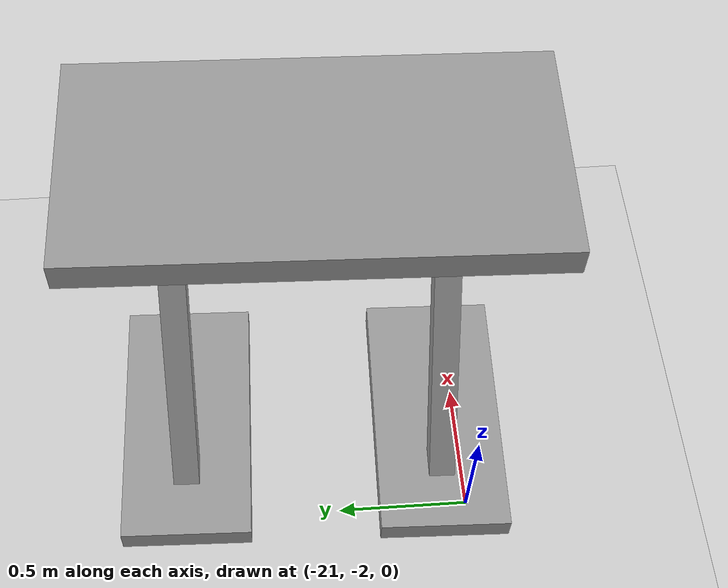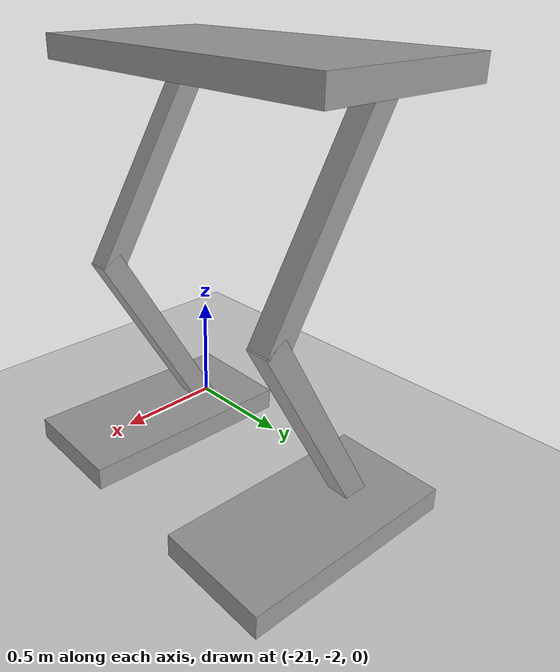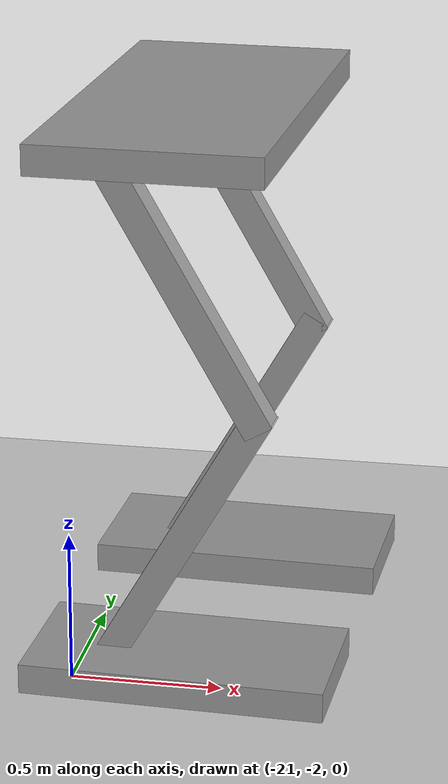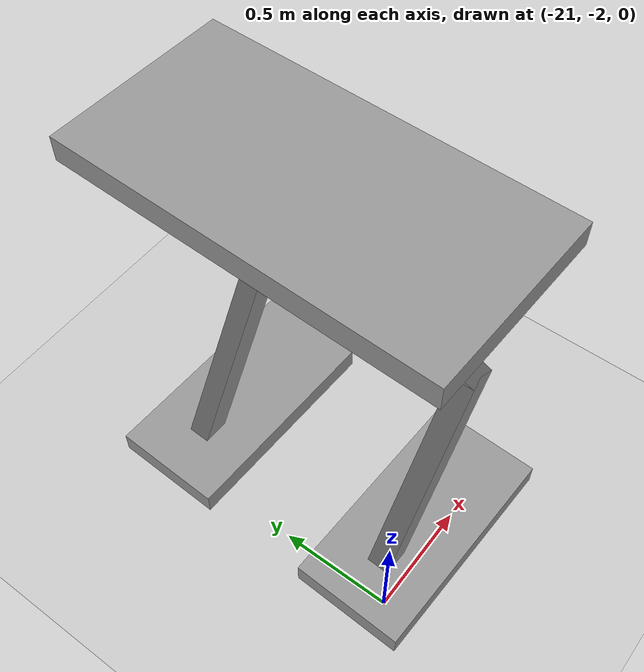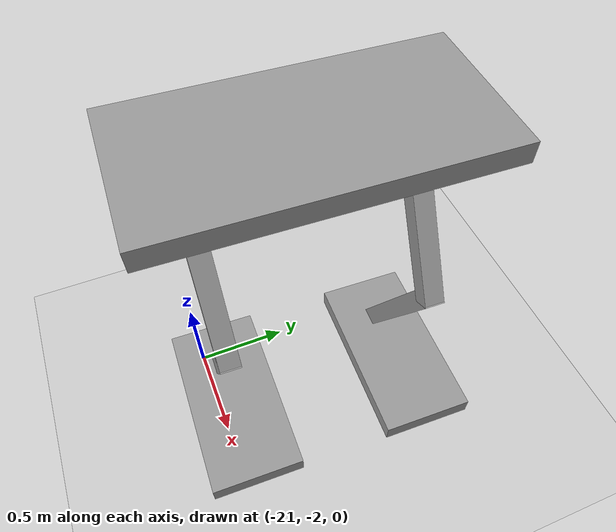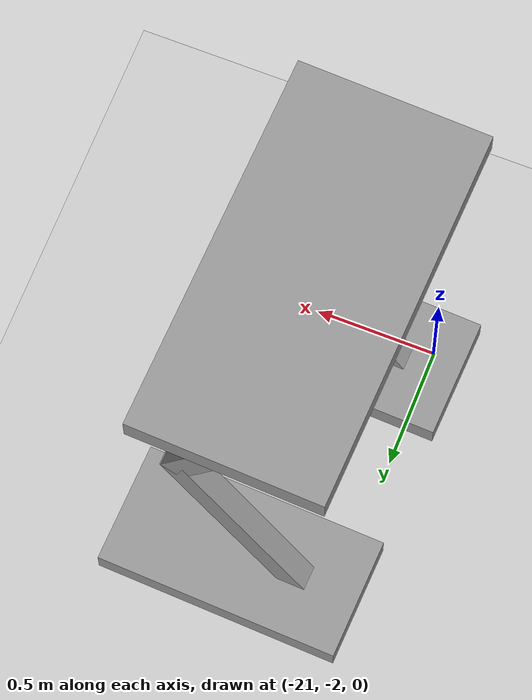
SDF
<sdf version="1.6">
 <world name="default">
  <model name="ground_plane">
   <static>1</static>
   <link name="link">
    <collision name="collision">
     <geometry><plane><normal>0 0 1</normal><size>100 100</size></plane></geometry>
     <surface><friction><ode><mu>100</mu><mu2>50</mu2></ode></friction></surface>
    </collision>
    <visual name="visual">
     <cast_shadows>0</cast_shadows>
     <geometry><plane><normal>0 0 1</normal><size>100 100</size></plane></geometry>
     <material>
      <script><uri>file://media/materials/scripts/gazebo.material</uri><name>Gazebo/Grey</name></script>
     </material>
    </visual>
   </link>
  </model>
  <model name="HumanoidRobot">
   <link name="link_1">
    <pose>0.010779 0.5 -0.738095 0 -0 0</pose>
    <inertial>
     <mass>1</mass>
     <inertia>
      <ixx>0.166667</ixx>
      <ixy>0</ixy>
      <ixz>0</ixz>
      <iyy>0.166667</iyy>
      <iyz>0</iyz>
      <izz>0.166667</izz>
     </inertia>
    </inertial>
    <visual name="visual">
     <geometry><box><size>1 0.5 0.1</size></box></geometry>
     <material>
      <lighting>1</lighting>
      <script><uri>file://media/materials/scripts/gazebo.material</uri><name>Gazebo/Grey</name></script>
      <ambient>0.3 0.3 0.3 1</ambient>
      <diffuse>0.7 0.7 0.7 1</diffuse>
      <specular>0.01 0.01 0.01 1</specular>
      <emissive>0 0 0 1</emissive>
      <shader type="vertex"><normal_map>__default__</normal_map></shader>
     </material>
    </visual>
    <collision name="collision">
     <geometry><box><size>1 0.5 0.1</size></box></geometry>
     <surface>
      <friction>
       <ode><mu>1</mu><mu2>1</mu2><fdir1>0 0 0</fdir1><slip1>0</slip1><slip2>0</slip2></ode>
       <torsional>
        <coefficient>1</coefficient>
        <patch_radius>0</patch_radius>
        <surface_radius>0</surface_radius>
        <use_patch_radius>1</use_patch_radius>
        <ode><slip>0</slip></ode>
       </torsional>
      </friction>
      <bounce><restitution_coefficient>0</restitution_coefficient><threshold>1e+06</threshold></bounce>
      <contact>
       <collide_without_contact>0</collide_without_contact>
       <collide_without_contact_bitmask>1</collide_without_contact_bitmask>
       <collide_bitmask>1</collide_bitmask>
       <ode>
        <soft_cfm>0</soft_cfm>
        <soft_erp>0.2</soft_erp>
        <kp>1e+13</kp>
        <kd>1</kd>
        <max_vel>0.01</max_vel>
        <min_depth>0</min_depth>
       </ode>
       <bullet>
        <split_impulse>1</split_impulse>
        <split_impulse_penetration_threshold>-0.01</split_impulse_penetration_threshold>
        <soft_cfm>0</soft_cfm>
        <soft_erp>0.2</soft_erp>
        <kp>1e+13</kp>
        <kd>1</kd>
       </bullet>
      </contact>
     </surface>
    </collision>
   </link>
   <link name="link_1_clone">
    <pose>0.010779 -0.5 -0.738095 0 -0 0</pose>
    <inertial>
     <mass>1</mass>
     <inertia>
      <ixx>0.166667</ixx>
      <ixy>0</ixy>
      <ixz>0</ixz>
      <iyy>0.166667</iyy>
      <iyz>0</iyz>
      <izz>0.166667</izz>
     </inertia>
    </inertial>
    <visual name="visual">
     <geometry><box><size>1 0.5 0.1</size></box></geometry>
     <material>
      <lighting>1</lighting>
      <script><uri>file://media/materials/scripts/gazebo.material</uri><name>Gazebo/Grey</name></script>
      <ambient>0.3 0.3 0.3 1</ambient>
      <diffuse>0.7 0.7 0.7 1</diffuse>
      <specular>0.01 0.01 0.01 1</specular>
      <emissive>0 0 0 1</emissive>
      <shader type="vertex"><normal_map>__default__</normal_map></shader>
     </material>
    </visual>
    <collision name="collision">
     <geometry><box><size>1 0.5 0.1</size></box></geometry>
     <surface>
      <friction>
       <ode><mu>1</mu><mu2>1</mu2><fdir1>0 0 0</fdir1><slip1>0</slip1><slip2>0</slip2></ode>
       <torsional>
        <coefficient>1</coefficient>
        <patch_radius>0</patch_radius>
        <surface_radius>0</surface_radius>
        <use_patch_radius>1</use_patch_radius>
        <ode><slip>0</slip></ode>
       </torsional>
      </friction>
      <bounce><restitution_coefficient>0</restitution_coefficient><threshold>1e+06</threshold></bounce>
      <contact>
       <collide_without_contact>0</collide_without_contact>
       <collide_without_contact_bitmask>1</collide_without_contact_bitmask>
       <collide_bitmask>1</collide_bitmask>
       <ode>
        <soft_cfm>0</soft_cfm>
        <soft_erp>0.2</soft_erp>
        <kp>1e+13</kp>
        <kd>1</kd>
        <max_vel>0.01</max_vel>
        <min_depth>0</min_depth>
       </ode>
       <bullet>
        <split_impulse>1</split_impulse>
        <split_impulse_penetration_threshold>-0.01</split_impulse_penetration_threshold>
        <soft_cfm>0</soft_cfm>
        <soft_erp>0.2</soft_erp>
        <kp>1e+13</kp>
        <kd>1</kd>
       </bullet>
      </contact>
     </surface>
    </collision>
   </link>
   <link name="link_2">
    <pose>0.010779 0.5 -0.285082 0 0.523598 0</pose>
    <inertial>
     <mass>1</mass>
     <inertia>
      <ixx>0.166667</ixx>
      <ixy>0</ixy>
      <ixz>0</ixz>
      <iyy>0.166667</iyy>
      <iyz>0</iyz>
      <izz>0.166667</izz>
     </inertia>
    </inertial>
    <visual name="visual">
     <geometry><box><size>0.1 0.1 1</size></box></geometry>
     <material>
      <lighting>1</lighting>
      <script><uri>file://media/materials/scripts/gazebo.material</uri><name>Gazebo/Grey</name></script>
      <ambient>0.3 0.3 0.3 1</ambient>
      <diffuse>0.7 0.7 0.7 1</diffuse>
      <specular>0.01 0.01 0.01 1</specular>
      <emissive>0 0 0 1</emissive>
      <shader type="vertex"><normal_map>__default__</normal_map></shader>
     </material>
    </visual>
    <collision name="collision">
     <geometry><box><size>0.1 0.1 1</size></box></geometry>
     <surface>
      <friction>
       <ode><mu>1</mu><mu2>1</mu2><fdir1>0 0 0</fdir1><slip1>0</slip1><slip2>0</slip2></ode>
       <torsional>
        <coefficient>1</coefficient>
        <patch_radius>0</patch_radius>
        <surface_radius>0</surface_radius>
        <use_patch_radius>1</use_patch_radius>
        <ode><slip>0</slip></ode>
       </torsional>
      </friction>
      <bounce><restitution_coefficient>0</restitution_coefficient><threshold>1e+06</threshold></bounce>
      <contact>
       <collide_without_contact>0</collide_without_contact>
       <collide_without_contact_bitmask>1</collide_without_contact_bitmask>
       <collide_bitmask>1</collide_bitmask>
       <ode>
        <soft_cfm>0</soft_cfm>
        <soft_erp>0.2</soft_erp>
        <kp>1e+13</kp>
        <kd>1</kd>
        <max_vel>0.01</max_vel>
        <min_depth>0</min_depth>
       </ode>
       <bullet>
        <split_impulse>1</split_impulse>
        <split_impulse_penetration_threshold>-0.01</split_impulse_penetration_threshold>
        <soft_cfm>0</soft_cfm>
        <soft_erp>0.2</soft_erp>
        <kp>1e+13</kp>
        <kd>1</kd>
       </bullet>
      </contact>
     </surface>
    </collision>
   </link>
   <link name="link_2_clone">
    <pose>0.009081 0.5 0.528002 0 -0.523598 0</pose>
    <inertial>
     <mass>1</mass>
     <inertia>
      <ixx>0.166667</ixx>
      <ixy>0</ixy>
      <ixz>0</ixz>
      <iyy>0.166667</iyy>
      <iyz>0</iyz>
      <izz>0.166667</izz>
     </inertia>
    </inertial>
    <visual name="visual">
     <geometry><box><size>0.1 0.1 1</size></box></geometry>
     <material>
      <lighting>1</lighting>
      <script><uri>file://media/materials/scripts/gazebo.material</uri><name>Gazebo/Grey</name></script>
      <ambient>0.3 0.3 0.3 1</ambient>
      <diffuse>0.7 0.7 0.7 1</diffuse>
      <specular>0.01 0.01 0.01 1</specular>
      <emissive>0 0 0 1</emissive>
      <shader type="vertex"><normal_map>__default__</normal_map></shader>
     </material>
    </visual>
    <collision name="collision">
     <geometry><box><size>0.1 0.1 1</size></box></geometry>
     <surface>
      <friction>
       <ode><mu>1</mu><mu2>1</mu2><fdir1>0 0 0</fdir1><slip1>0</slip1><slip2>0</slip2></ode>
       <torsional>
        <coefficient>1</coefficient>
        <patch_radius>0</patch_radius>
        <surface_radius>0</surface_radius>
        <use_patch_radius>1</use_patch_radius>
        <ode><slip>0</slip></ode>
       </torsional>
      </friction>
      <bounce><restitution_coefficient>0</restitution_coefficient><threshold>1e+06</threshold></bounce>
      <contact>
       <collide_without_contact>0</collide_without_contact>
       <collide_without_contact_bitmask>1</collide_without_contact_bitmask>
       <collide_bitmask>1</collide_bitmask>
       <ode>
        <soft_cfm>0</soft_cfm>
        <soft_erp>0.2</soft_erp>
        <kp>1e+13</kp>
        <kd>1</kd>
        <max_vel>0.01</max_vel>
        <min_depth>0</min_depth>
       </ode>
       <bullet>
        <split_impulse>1</split_impulse>
        <split_impulse_penetration_threshold>-0.01</split_impulse_penetration_threshold>
        <soft_cfm>0</soft_cfm>
        <soft_erp>0.2</soft_erp>
        <kp>1e+13</kp>
        <kd>1</kd>
       </bullet>
      </contact>
     </surface>
    </collision>
   </link>
   <link name="link_2_clone_0">
    <pose>0.010779 -0.5 -0.288095 0 0.523598 0</pose>
    <inertial>
     <mass>1</mass>
     <inertia>
      <ixx>0.166667</ixx>
      <ixy>0</ixy>
      <ixz>0</ixz>
      <iyy>0.166667</iyy>
      <iyz>0</iyz>
      <izz>0.166667</izz>
     </inertia>
    </inertial>
    <visual name="visual">
     <geometry><box><size>0.1 0.1 1</size></box></geometry>
     <material>
      <lighting>1</lighting>
      <script><uri>file://media/materials/scripts/gazebo.material</uri><name>Gazebo/Grey</name></script>
      <ambient>0.3 0.3 0.3 1</ambient>
      <diffuse>0.7 0.7 0.7 1</diffuse>
      <specular>0.01 0.01 0.01 1</specular>
      <emissive>0 0 0 1</emissive>
      <shader type="vertex"><normal_map>__default__</normal_map></shader>
     </material>
    </visual>
    <collision name="collision">
     <geometry><box><size>0.1 0.1 1</size></box></geometry>
     <surface>
      <friction>
       <ode><mu>1</mu><mu2>1</mu2><fdir1>0 0 0</fdir1><slip1>0</slip1><slip2>0</slip2></ode>
       <torsional>
        <coefficient>1</coefficient>
        <patch_radius>0</patch_radius>
        <surface_radius>0</surface_radius>
        <use_patch_radius>1</use_patch_radius>
        <ode><slip>0</slip></ode>
       </torsional>
      </friction>
      <bounce><restitution_coefficient>0</restitution_coefficient><threshold>1e+06</threshold></bounce>
      <contact>
       <collide_without_contact>0</collide_without_contact>
       <collide_without_contact_bitmask>1</collide_without_contact_bitmask>
       <collide_bitmask>1</collide_bitmask>
       <ode>
        <soft_cfm>0</soft_cfm>
        <soft_erp>0.2</soft_erp>
        <kp>1e+13</kp>
        <kd>1</kd>
        <max_vel>0.01</max_vel>
        <min_depth>0</min_depth>
       </ode>
       <bullet>
        <split_impulse>1</split_impulse>
        <split_impulse_penetration_threshold>-0.01</split_impulse_penetration_threshold>
        <soft_cfm>0</soft_cfm>
        <soft_erp>0.2</soft_erp>
        <kp>1e+13</kp>
        <kd>1</kd>
       </bullet>
      </contact>
     </surface>
    </collision>
   </link>
   <link name="link_2_clone_clone">
    <pose>0.009081 -0.5 0.524989 0 -0.523598 0</pose>
    <inertial>
     <mass>1</mass>
     <inertia>
      <ixx>0.166667</ixx>
      <ixy>0</ixy>
      <ixz>0</ixz>
      <iyy>0.166667</iyy>
      <iyz>0</iyz>
      <izz>0.166667</izz>
     </inertia>
    </inertial>
    <visual name="visual">
     <geometry><box><size>0.1 0.1 1</size></box></geometry>
     <material>
      <lighting>1</lighting>
      <script><uri>file://media/materials/scripts/gazebo.material</uri><name>Gazebo/Grey</name></script>
      <ambient>0.3 0.3 0.3 1</ambient>
      <diffuse>0.7 0.7 0.7 1</diffuse>
      <specular>0.01 0.01 0.01 1</specular>
      <emissive>0 0 0 1</emissive>
      <shader type="vertex"><normal_map>__default__</normal_map></shader>
     </material>
    </visual>
    <collision name="collision">
     <geometry><box><size>0.1 0.1 1</size></box></geometry>
     <surface>
      <friction>
       <ode><mu>1</mu><mu2>1</mu2><fdir1>0 0 0</fdir1><slip1>0</slip1><slip2>0</slip2></ode>
       <torsional>
        <coefficient>1</coefficient>
        <patch_radius>0</patch_radius>
        <surface_radius>0</surface_radius>
        <use_patch_radius>1</use_patch_radius>
        <ode><slip>0</slip></ode>
       </torsional>
      </friction>
      <bounce><restitution_coefficient>0</restitution_coefficient><threshold>1e+06</threshold></bounce>
      <contact>
       <collide_without_contact>0</collide_without_contact>
       <collide_without_contact_bitmask>1</collide_without_contact_bitmask>
       <collide_bitmask>1</collide_bitmask>
       <ode>
        <soft_cfm>0</soft_cfm>
        <soft_erp>0.2</soft_erp>
        <kp>1e+13</kp>
        <kd>1</kd>
        <max_vel>0.01</max_vel>
        <min_depth>0</min_depth>
       </ode>
       <bullet>
        <split_impulse>1</split_impulse>
        <split_impulse_penetration_threshold>-0.01</split_impulse_penetration_threshold>
        <soft_cfm>0</soft_cfm>
        <soft_erp>0.2</soft_erp>
        <kp>1e+13</kp>
        <kd>1</kd>
       </bullet>
      </contact>
     </surface>
    </collision>
   </link>
   <link name="link_3">
    <pose>-0.061278 0 0.996374 0 -0 0</pose>
    <inertial>
     <mass>1</mass>
     <inertia>
      <ixx>0.166667</ixx>
      <ixy>0</ixy>
      <ixz>0</ixz>
      <iyy>0.166667</iyy>
      <iyz>0</iyz>
      <izz>0.166667</izz>
     </inertia>
    </inertial>
    <visual name="visual">
     <geometry><box><size>0.75 1.5 0.1</size></box></geometry>
     <material>
      <lighting>1</lighting>
      <script><uri>file://media/materials/scripts/gazebo.material</uri><name>Gazebo/Grey</name></script>
      <ambient>0.3 0.3 0.3 1</ambient>
      <diffuse>0.7 0.7 0.7 1</diffuse>
      <specular>0.01 0.01 0.01 1</specular>
      <emissive>0 0 0 1</emissive>
      <shader type="vertex"><normal_map>__default__</normal_map></shader>
     </material>
    </visual>
    <collision name="collision">
     <geometry><box><size>0.75 1.5 0.1</size></box></geometry>
     <surface>
      <friction>
       <ode><mu>1</mu><mu2>1</mu2><fdir1>0 0 0</fdir1><slip1>0</slip1><slip2>0</slip2></ode>
       <torsional>
        <coefficient>1</coefficient>
        <patch_radius>0</patch_radius>
        <surface_radius>0</surface_radius>
        <use_patch_radius>1</use_patch_radius>
        <ode><slip>0</slip></ode>
       </torsional>
      </friction>
      <bounce><restitution_coefficient>0</restitution_coefficient><threshold>1e+06</threshold></bounce>
      <contact>
       <collide_without_contact>0</collide_without_contact>
       <collide_without_contact_bitmask>1</collide_without_contact_bitmask>
       <collide_bitmask>1</collide_bitmask>
       <ode>
        <soft_cfm>0</soft_cfm>
        <soft_erp>0.2</soft_erp>
        <kp>1e+13</kp>
        <kd>1</kd>
        <max_vel>0.01</max_vel>
        <min_depth>0</min_depth>
       </ode>
       <bullet>
        <split_impulse>1</split_impulse>
        <split_impulse_penetration_threshold>-0.01</split_impulse_penetration_threshold>
        <soft_cfm>0</soft_cfm>
        <soft_erp>0.2</soft_erp>
        <kp>1e+13</kp>
        <kd>1</kd>
       </bullet>
      </contact>
     </surface>
    </collision>
   </link>
   <joint name="link_1_JOINT_0" type="revolute">
    <parent>link_1</parent>
    <child>link_2</child>
    <axis>
     <xyz>-1 0 0</xyz>
     <use_parent_model_frame>0</use_parent_model_frame>
     <limit>
      <lower>-1.79769e+308</lower>
      <upper>1.79769e+308</upper>
      <effort>-1</effort>
      <velocity>-1</velocity>
     </limit>
     <dynamics>
      <spring_reference>0</spring_reference>
      <spring_stiffness>0</spring_stiffness>
      <damping>0</damping>
      <friction>0</friction>
     </dynamics>
    </axis>
    <physics>
     <ode><limit><cfm>0</cfm><erp>0.2</erp></limit><suspension><cfm>0</cfm><erp>0.2</erp></suspension></ode>
    </physics>
   </joint>
   <joint name="link_1_clone_JOINT_2" type="revolute">
    <parent>link_1_clone</parent>
    <child>link_2_clone_0</child>
    <axis>
     <xyz>-1 0 0</xyz>
     <use_parent_model_frame>0</use_parent_model_frame>
     <limit>
      <lower>-1.79769e+308</lower>
      <upper>1.79769e+308</upper>
      <effort>-1</effort>
      <velocity>-1</velocity>
     </limit>
     <dynamics>
      <spring_reference>0</spring_reference>
      <spring_stiffness>0</spring_stiffness>
      <damping>0</damping>
     </dynamics>
    </axis>
    <physics>
     <ode><limit><cfm>0</cfm><erp>0.2</erp></limit><suspension><cfm>0</cfm><erp>0.2</erp></suspension></ode>
    </physics>
   </joint>
   <joint name="link_2_JOINT_1" type="revolute">
    <parent>link_2</parent>
    <child>link_2_clone</child>
    <axis>
     <xyz>-1 0 0</xyz>
     <use_parent_model_frame>0</use_parent_model_frame>
     <limit>
      <lower>-1.79769e+308</lower>
      <upper>1.79769e+308</upper>
      <effort>-1</effort>
      <velocity>-1</velocity>
     </limit>
     <dynamics>
      <spring_reference>0</spring_reference>
      <spring_stiffness>0</spring_stiffness>
      <damping>0</damping>
     </dynamics>
    </axis>
    <physics>
     <ode><limit><cfm>0</cfm><erp>0.2</erp></limit><suspension><cfm>0</cfm><erp>0.2</erp></suspension></ode>
    </physics>
   </joint>
   <joint name="link_2_clone_0_JOINT_3" type="revolute">
    <parent>link_2_clone_0</parent>
    <child>link_2_clone_clone</child>
    <axis>
     <xyz>-1 0 0</xyz>
     <use_parent_model_frame>0</use_parent_model_frame>
     <limit>
      <lower>-1.79769e+308</lower>
      <upper>1.79769e+308</upper>
      <effort>-1</effort>
      <velocity>-1</velocity>
     </limit>
     <dynamics>
      <spring_reference>0</spring_reference>
      <spring_stiffness>0</spring_stiffness>
      <damping>0</damping>
     </dynamics>
    </axis>
    <physics>
     <ode><limit><cfm>0</cfm><erp>0.2</erp></limit><suspension><cfm>0</cfm><erp>0.2</erp></suspension></ode>
    </physics>
   </joint>
   <joint name="link_2_clone_JOINT_5" type="revolute">
    <parent>link_2_clone</parent>
    <child>link_3</child>
    <axis>
     <xyz>1 0 0</xyz>
     <use_parent_model_frame>0</use_parent_model_frame>
     <limit>
      <lower>-1.79769e+308</lower>
      <upper>1.79769e+308</upper>
      <effort>-1</effort>
      <velocity>-1</velocity>
     </limit>
     <dynamics>
      <spring_reference>0</spring_reference>
      <spring_stiffness>0</spring_stiffness>
      <damping>0</damping>
     </dynamics>
    </axis>
    <physics>
     <ode><limit><cfm>0</cfm><erp>0.2</erp></limit><suspension><cfm>0</cfm><erp>0.2</erp></suspension></ode>
    </physics>
   </joint>
   <joint name="link_2_clone_clone_JOINT_6" type="revolute">
    <parent>link_2_clone_clone</parent>
    <child>link_3</child>
    <axis>
     <xyz>1 0 0</xyz>
     <use_parent_model_frame>0</use_parent_model_frame>
     <limit>
      <lower>-1.79769e+308</lower>
      <upper>1.79769e+308</upper>
      <effort>-1</effort>
      <velocity>-1</velocity>
     </limit>
     <dynamics>
      <spring_reference>0</spring_reference>
      <spring_stiffness>0</spring_stiffness>
      <damping>0</damping>
     </dynamics>
    </axis>
    <physics>
     <ode><limit><cfm>0</cfm><erp>0.2</erp></limit><suspension><cfm>0</cfm><erp>0.2</erp></suspension></ode>
    </physics>
   </joint>
   <static>0</static>
   <pose>-20.6273 -1.41654 0.788086 1e-05 -2e-06 -0.034721</pose>
  </model>
 </world>
</sdf>
